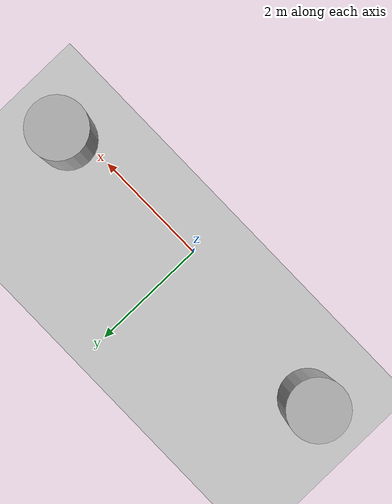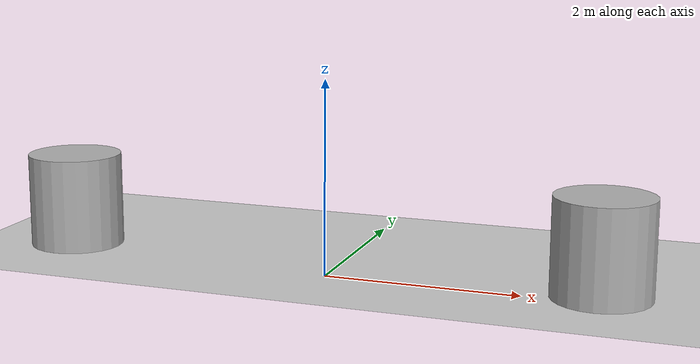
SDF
<sdf version='1.10'>
  <world name='empty'>
    <physics name='1ms' type='ignored'>
      <max_step_size>0.001</max_step_size>
      <real_time_factor>1</real_time_factor>
      <real_time_update_rate>1000</real_time_update_rate>
    </physics>
    <plugin name='gz::sim::systems::Sensors' filename='gz-sim-sensors-system'>
      <render_engine>ogre2</render_engine>
    </plugin>
    <plugin name='gz::sim::systems::Physics' filename='gz-sim-physics-system'/>
    <plugin name='gz::sim::systems::UserCommands' filename='gz-sim-user-commands-system'/>
    <plugin name='gz::sim::systems::SceneBroadcaster' filename='gz-sim-scene-broadcaster-system'/>
    <plugin name='gz::sim::systems::Contact' filename='gz-sim-contact-system'/>
    <gravity>0 0 -9.8000000000000007</gravity>
    <magnetic_field>5.5644999999999998e-06 2.2875799999999999e-05 -4.2388400000000002e-05</magnetic_field>
    <atmosphere type='adiabatic'/>
    <scene>
      <ambient>0.400000006 0.400000006 0.400000006 1</ambient>
      <background>0.699999988 0.699999988 0.699999988 1</background>
      <shadows>true</shadows>
    </scene>
    <model name='ground_plane'>
      <static>true</static>
      <link name='link'>
        <collision name='collision'>
          <geometry>
            <plane>
              <normal>0 0 1</normal>
              <size>100 100</size>
            </plane>
          </geometry>
          <surface>
            <friction>
              <ode/>
            </friction>
            <bounce/>
            <contact/>
          </surface>
        </collision>
        <visual name='visual'>
          <geometry>
            <plane>
              <normal>0 0 1</normal>
              <size>100 100</size>
            </plane>
          </geometry>
          <material>
            <ambient>0.800000012 0.800000012 0.800000012 1</ambient>
            <diffuse>0.800000012 0.800000012 0.800000012 1</diffuse>
            <specular>0.800000012 0.800000012 0.800000012 1</specular>
          </material>
        </visual>
        <pose>0 0 0 0 0 0</pose>
        <inertial>
          <pose>0 0 0 0 0 0</pose>
          <mass>1</mass>
          <inertia>
            <ixx>1</ixx>
            <ixy>0</ixy>
            <ixz>0</ixz>
            <iyy>1</iyy>
            <iyz>0</iyz>
            <izz>1</izz>
          </inertia>
        </inertial>
        <enable_wind>false</enable_wind>
      </link>
      <pose>0 0 0 0 0 0</pose>
      <self_collide>false</self_collide>
    </model>
    <model name='cylinder'>
      <pose>2.7326458840786252 0.20551810756738509 0.49999943207967634 -6.4929220397926661e-19 -3.236813228494783e-19 -6.5552336678440413e-21</pose>
      <link name='cylinder_link'>
        <inertial>
          <inertia>
            <ixx>0.14580000000000001</ixx>
            <ixy>0</ixy>
            <ixz>0</ixz>
            <iyy>0.14580000000000001</iyy>
            <iyz>0</iyz>
            <izz>0.125</izz>
          </inertia>
          <mass>1</mass>
          <pose>0 0 0 0 0 0</pose>
        </inertial>
        <collision name='cylinder_collision'>
          <geometry>
            <cylinder>
              <radius>0.5</radius>
              <length>1</length>
            </cylinder>
          </geometry>
          <surface>
            <friction>
              <ode/>
            </friction>
            <bounce/>
            <contact/>
          </surface>
        </collision>
        <visual name='cylinder_visual'>
          <geometry>
            <cylinder>
              <radius>0.5</radius>
              <length>1</length>
            </cylinder>
          </geometry>
          <material>
            <ambient>0.300000012 0.300000012 0.300000012 1</ambient>
            <diffuse>0.699999988 0.699999988 0.699999988 1</diffuse>
            <specular>1 1 1 1</specular>
          </material>
        </visual>
        <pose>0 0 0 0 0 0</pose>
        <enable_wind>false</enable_wind>
      </link>
      <static>false</static>
      <self_collide>false</self_collide>
    </model>
    <model name='cylinder_0'>
      <pose>-3.0120600554026731 0.31230554677655947 0.49999942638036005 2.6081360420355177e-19 1.8946293208308353e-19 2.4642554741974699e-20</pose>
      <link name='cylinder_link'>
        <inertial>
          <inertia>
            <ixx>0.14580000000000001</ixx>
            <ixy>0</ixy>
            <ixz>0</ixz>
            <iyy>0.14580000000000001</iyy>
            <iyz>0</iyz>
            <izz>0.125</izz>
          </inertia>
          <mass>1</mass>
          <pose>0 0 0 0 0 0</pose>
        </inertial>
        <collision name='cylinder_collision'>
          <geometry>
            <cylinder>
              <radius>0.5</radius>
              <length>1</length>
            </cylinder>
          </geometry>
          <surface>
            <friction>
              <ode/>
            </friction>
            <bounce/>
            <contact/>
          </surface>
        </collision>
        <visual name='cylinder_visual'>
          <geometry>
            <cylinder>
              <radius>0.5</radius>
              <length>1</length>
            </cylinder>
          </geometry>
          <material>
            <ambient>0.300000012 0.300000012 0.300000012 1</ambient>
            <diffuse>0.699999988 0.699999988 0.699999988 1</diffuse>
            <specular>1 1 1 1</specular>
          </material>
        </visual>
        <pose>0 0 0 0 0 0</pose>
        <enable_wind>false</enable_wind>
      </link>
      <static>false</static>
      <self_collide>false</self_collide>
    </model>
    <light name='sun' type='directional'>
      <pose>0 0 10 0 0 0</pose>
      <cast_shadows>true</cast_shadows>
      <intensity>1</intensity>
      <direction>-0.5 0.10000000000000001 -0.90000000000000002</direction>
      <diffuse>0.800000012 0.800000012 0.800000012 1</diffuse>
      <specular>0.200000003 0.200000003 0.200000003 1</specular>
      <attenuation>
        <range>1000</range>
        <linear>0.01</linear>
        <constant>0.90000000000000002</constant>
        <quadratic>0.001</quadratic>
      </attenuation>
      <spot>
        <inner_angle>0</inner_angle>
        <outer_angle>0</outer_angle>
        <falloff>0</falloff>
      </spot>
    </light>
  </world>
</sdf>
